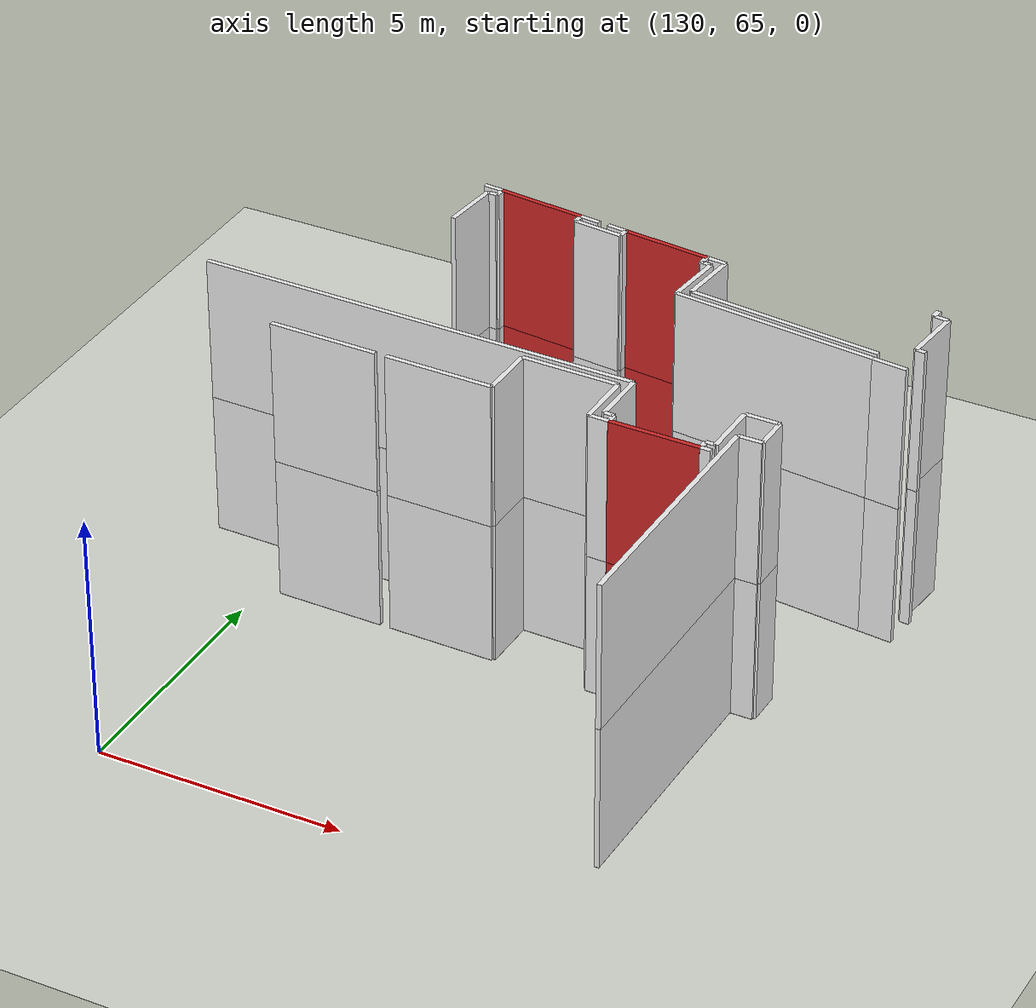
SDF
<sdf version="1.6">
 <world name="default">
  <model name="floor1">
   <static>true</static>
   <pose>135.22499999997672 69.80499999970198 0.0 0 0 0</pose>
   <link name="link">
    <visual name="visual">
     <geometry><box><size>208.23000000003958 126.51000000024214 0.01</size></box></geometry>
     <material>
      <script><uri>file://media/materials/scripts/gazebo.material</uri><name>Gazebo/Concrete</name></script>
      <ambient>1 1 1 0.5</ambient>
      <diffuse>1 1 1 0.5</diffuse>
     </material>
    </visual>
    <collision name="collision">
     <geometry><box><size>208.23000000003958 126.51000000024214 0.01</size></box></geometry>
     <surface><friction><ode><mu>1.0</mu><mu2>1.0</mu2></ode></friction></surface>
    </collision>
   </link>
  </model>
  <model name="wall_135.5_76.8_1.5">
   <static>true</static>
   <pose>135.49499999999534 76.79000000003725 1.5 0 0 -0.10022174961299568</pose>
   <link name="link">
    <visual name="visual">
     <geometry><box><size>1.799027515083101 0.1 3</size></box></geometry>
     <material>
      <script><uri>file://media/materials/scripts/gazebo.material</uri><name>Gazebo/Red</name></script>
     </material>
    </visual>
    <collision name="collision"><geometry><box><size>1.799027515083101 0.1 3</size></box></geometry></collision>
   </link>
  </model>
  <model name="wall_132.7_77.1_1.5">
   <static>true</static>
   <pose>132.7049999999872 77.07000000006519 1.5 0 0 -0.10022174987377463</pose>
   <link name="link">
    <visual name="visual">
     <geometry><box><size>1.7990275150717767 0.1 3</size></box></geometry>
     <material>
      <script><uri>file://media/materials/scripts/gazebo.material</uri><name>Gazebo/Red</name></script>
     </material>
    </visual>
    <collision name="collision"><geometry><box><size>1.7990275150717767 0.1 3</size></box></geometry></collision>
   </link>
  </model>
  <model name="wall_138.2_70.8_1.5">
   <static>true</static>
   <pose>138.2149999999965 70.78000000002794 1.5 0 0 -0.01104927408967263</pose>
   <link name="link">
    <visual name="visual">
     <geometry><box><size>1.810110493862824 0.1 3</size></box></geometry>
     <material>
      <script><uri>file://media/materials/scripts/gazebo.material</uri><name>Gazebo/Red</name></script>
     </material>
    </visual>
    <collision name="collision"><geometry><box><size>1.810110493862824 0.1 3</size></box></geometry></collision>
   </link>
  </model>
  <model name="wall_135.5_76.8_4.5">
   <static>true</static>
   <pose>135.49499999999534 76.79000000003725 4.5 0 0 -0.10022174961299568</pose>
   <link name="link">
    <visual name="visual">
     <geometry><box><size>1.799027515083101 0.1 3</size></box></geometry>
     <material>
      <script><uri>file://media/materials/scripts/gazebo.material</uri><name>Gazebo/Red</name></script>
     </material>
    </visual>
    <collision name="collision"><geometry><box><size>1.799027515083101 0.1 3</size></box></geometry></collision>
   </link>
  </model>
  <model name="wall_132.7_77.1_4.5">
   <static>true</static>
   <pose>132.7049999999872 77.07000000006519 4.5 0 0 -0.10022174987377463</pose>
   <link name="link">
    <visual name="visual">
     <geometry><box><size>1.7990275150717767 0.1 3</size></box></geometry>
     <material>
      <script><uri>file://media/materials/scripts/gazebo.material</uri><name>Gazebo/Red</name></script>
     </material>
    </visual>
    <collision name="collision"><geometry><box><size>1.7990275150717767 0.1 3</size></box></geometry></collision>
   </link>
  </model>
  <model name="wall_138.2_70.8_4.5">
   <static>true</static>
   <pose>138.2149999999965 70.78000000002794 4.5 0 0 -0.01104927408967263</pose>
   <link name="link">
    <visual name="visual">
     <geometry><box><size>1.810110493862824 0.1 3</size></box></geometry>
     <material>
      <script><uri>file://media/materials/scripts/gazebo.material</uri><name>Gazebo/Red</name></script>
     </material>
    </visual>
    <collision name="collision"><geometry><box><size>1.810110493862824 0.1 3</size></box></geometry></collision>
   </link>
  </model>
  <model name="wall_134.4_76.9_1.5">
   <static>true</static>
   <pose>134.39999999999418 76.89999999990687 1.5 0 0 3.0419240009977764</pose>
   <link name="link">
    <visual name="visual">
     <geometry><box><size>0.4019950248137912 0.1 3</size></box></geometry>
     <material>
      <script><uri>file://media/materials/scripts/gazebo.material</uri><name>Gazebo/White</name></script>
     </material>
    </visual>
    <collision name="collision"><geometry><box><size>0.4019950248137912 0.1 3</size></box></geometry></collision>
   </link>
  </model>
  <model name="wall_138.6_75.3_1.5">
   <static>true</static>
   <pose>138.63999999998487 75.26000000000931 1.5 0 0 3.0404164645756886</pose>
   <link name="link">
    <visual name="visual">
     <geometry><box><size>3.9602525171943066 0.1 3</size></box></geometry>
     <material>
      <script><uri>file://media/materials/scripts/gazebo.material</uri><name>Gazebo/White</name></script>
     </material>
    </visual>
    <collision name="collision"><geometry><box><size>3.9602525171943066 0.1 3</size></box></geometry></collision>
   </link>
  </model>
  <model name="wall_136.7_76.1_1.5">
   <static>true</static>
   <pose>136.72999999998137 76.06000000005588 1.5 0 0 1.4711276743229451</pose>
   <link name="link">
    <visual name="visual">
     <geometry><box><size>1.2059850747193837 0.1 3</size></box></geometry>
     <material>
      <script><uri>file://media/materials/scripts/gazebo.material</uri><name>Gazebo/White</name></script>
     </material>
    </visual>
    <collision name="collision"><geometry><box><size>1.2059850747193837 0.1 3</size></box></geometry></collision>
   </link>
  </model>
  <model name="wall_136.6_76.7_1.5">
   <static>true</static>
   <pose>136.5899999999965 76.68000000016764 1.5 0 0 3.0419240009977764</pose>
   <link name="link">
    <visual name="visual">
     <geometry><box><size>0.4019950248137912 0.1 3</size></box></geometry>
     <material>
      <script><uri>file://media/materials/scripts/gazebo.material</uri><name>Gazebo/White</name></script>
     </material>
    </visual>
    <collision name="collision"><geometry><box><size>0.4019950248137912 0.1 3</size></box></geometry></collision>
   </link>
  </model>
  <model name="wall_133.8_77.0_1.5">
   <static>true</static>
   <pose>133.79999999998836 76.95999999996275 1.5 0 0 -0.09966865257760905</pose>
   <link name="link">
    <visual name="visual">
     <geometry><box><size>0.40199502487170996 0.1 3</size></box></geometry>
     <material>
      <script><uri>file://media/materials/scripts/gazebo.material</uri><name>Gazebo/White</name></script>
     </material>
    </visual>
    <collision name="collision"><geometry><box><size>0.40199502487170996 0.1 3</size></box></geometry></collision>
   </link>
  </model>
  <model name="wall_131.6_77.2_1.5">
   <static>true</static>
   <pose>131.60999999998603 77.18000000016764 1.5 0 0 -0.09966865257760905</pose>
   <link name="link">
    <visual name="visual">
     <geometry><box><size>0.40199502487170996 0.1 3</size></box></geometry>
     <material>
      <script><uri>file://media/materials/scripts/gazebo.material</uri><name>Gazebo/White</name></script>
     </material>
    </visual>
    <collision name="collision"><geometry><box><size>0.40199502487170996 0.1 3</size></box></geometry></collision>
   </link>
  </model>
  <model name="wall_141.0_76.8_1.5">
   <static>true</static>
   <pose>140.9899999999907 76.8300000000745 1.5 0 0 -1.6704649792860586</pose>
   <link name="link">
    <visual name="visual">
     <geometry><box><size>0.20099751260961132 0.1 3</size></box></geometry>
     <material>
      <script><uri>file://media/materials/scripts/gazebo.material</uri><name>Gazebo/White</name></script>
     </material>
    </visual>
    <collision name="collision"><geometry><box><size>0.20099751260961132 0.1 3</size></box></geometry></collision>
   </link>
  </model>
  <model name="wall_141.1_76.7_1.5">
   <static>true</static>
   <pose>141.13000000000466 76.71999999997206 1.5 0 0 -0.066568163827335</pose>
   <link name="link">
    <visual name="visual">
     <geometry><box><size>0.30066592761516014 0.1 3</size></box></geometry>
     <material>
      <script><uri>file://media/materials/scripts/gazebo.material</uri><name>Gazebo/White</name></script>
     </material>
    </visual>
    <collision name="collision"><geometry><box><size>0.30066592761516014 0.1 3</size></box></geometry></collision>
   </link>
  </model>
  <model name="wall_141.2_76.1_1.5">
   <static>true</static>
   <pose>141.22000000000116 76.10999999986961 1.5 0 0 -1.6704649793148743</pose>
   <link name="link">
    <visual name="visual">
     <geometry><box><size>1.2059850747251755 0.1 3</size></box></geometry>
     <material>
      <script><uri>file://media/materials/scripts/gazebo.material</uri><name>Gazebo/White</name></script>
     </material>
    </visual>
    <collision name="collision"><geometry><box><size>1.2059850747251755 0.1 3</size></box></geometry></collision>
   </link>
  </model>
  <model name="wall_141.3_75.5_1.5">
   <static>true</static>
   <pose>141.2599999999802 75.5 1.5 0 0 -0.09966865027235515</pose>
   <link name="link">
    <visual name="visual">
     <geometry><box><size>0.20099751238951993 0.1 3</size></box></geometry>
     <material>
      <script><uri>file://media/materials/scripts/gazebo.material</uri><name>Gazebo/White</name></script>
     </material>
    </visual>
    <collision name="collision"><geometry><box><size>0.20099751238951993 0.1 3</size></box></geometry></collision>
   </link>
  </model>
  <model name="wall_140.9_74.8_1.5">
   <static>true</static>
   <pose>140.94000000000233 74.83499999996275 1.5 0 0 3.041924000670513</pose>
   <link name="link">
    <visual name="visual">
     <geometry><box><size>0.7034912934617817 0.1 3</size></box></geometry>
     <material>
      <script><uri>file://media/materials/scripts/gazebo.material</uri><name>Gazebo/White</name></script>
     </material>
    </visual>
    <collision name="collision"><geometry><box><size>0.7034912934617817 0.1 3</size></box></geometry></collision>
   </link>
  </model>
  <model name="wall_138.5_75.1_1.5">
   <static>true</static>
   <pose>138.52000000001863 75.07499999995343 1.5 0 0 3.0428807098041264</pose>
   <link name="link">
    <visual name="visual">
     <geometry><box><size>4.1602523961721385 0.1 3</size></box></geometry>
     <material>
      <script><uri>file://media/materials/scripts/gazebo.material</uri><name>Gazebo/White</name></script>
     </material>
    </visual>
    <collision name="collision"><geometry><box><size>4.1602523961721385 0.1 3</size></box></geometry></collision>
   </link>
  </model>
  <model name="wall_136.5_75.9_1.5">
   <static>true</static>
   <pose>136.5100000000093 75.87999999988824 1.5 0 0 1.4711276743229451</pose>
   <link name="link">
    <visual name="visual">
     <geometry><box><size>1.2059850747193837 0.1 3</size></box></geometry>
     <material>
      <script><uri>file://media/materials/scripts/gazebo.material</uri><name>Gazebo/White</name></script>
     </material>
    </visual>
    <collision name="collision"><geometry><box><size>1.2059850747193837 0.1 3</size></box></geometry></collision>
   </link>
  </model>
  <model name="wall_136.5_76.5_1.5">
   <static>true</static>
   <pose>136.47000000000116 76.48999999999069 1.5 0 0 3.0419240010121844</pose>
   <link name="link">
    <visual name="visual">
     <geometry><box><size>0.20099751243585498 0.1 3</size></box></geometry>
     <material>
      <script><uri>file://media/materials/scripts/gazebo.material</uri><name>Gazebo/White</name></script>
     </material>
    </visual>
    <collision name="collision"><geometry><box><size>0.20099751243585498 0.1 3</size></box></geometry></collision>
   </link>
  </model>
  <model name="wall_136.4_76.6_1.5">
   <static>true</static>
   <pose>136.38000000000466 76.60000000009313 1.5 0 0 1.4711276743037347</pose>
   <link name="link">
    <visual name="visual">
     <geometry><box><size>0.20099751260961132 0.1 3</size></box></geometry>
     <material>
      <script><uri>file://media/materials/scripts/gazebo.material</uri><name>Gazebo/White</name></script>
     </material>
    </visual>
    <collision name="collision"><geometry><box><size>0.20099751260961132 0.1 3</size></box></geometry></collision>
   </link>
  </model>
  <model name="wall_134.6_76.8_1.5">
   <static>true</static>
   <pose>134.5899999999965 76.78000000002794 1.5 0 0 -1.6704649792284274</pose>
   <link name="link">
    <visual name="visual">
     <geometry><box><size>0.20099751214046915 0.1 3</size></box></geometry>
     <material>
      <script><uri>file://media/materials/scripts/gazebo.material</uri><name>Gazebo/White</name></script>
     </material>
    </visual>
    <collision name="collision"><geometry><box><size>0.20099751214046915 0.1 3</size></box></geometry></collision>
   </link>
  </model>
  <model name="wall_134.1_76.7_1.5">
   <static>true</static>
   <pose>134.0800000000163 76.72999999998137 1.5 0 0 3.0419240014674718</pose>
   <link name="link">
    <visual name="visual">
     <geometry><box><size>1.004987562075021 0.1 3</size></box></geometry>
     <material>
      <script><uri>file://media/materials/scripts/gazebo.material</uri><name>Gazebo/White</name></script>
     </material>
    </visual>
    <collision name="collision"><geometry><box><size>1.004987562075021 0.1 3</size></box></geometry></collision>
   </link>
  </model>
  <model name="wall_133.6_76.9_1.5">
   <static>true</static>
   <pose>133.5899999999965 76.87999999988824 1.5 0 0 1.4711276745918913</pose>
   <link name="link">
    <visual name="visual">
     <geometry><box><size>0.20099751260381943 0.1 3</size></box></geometry>
     <material>
      <script><uri>file://media/materials/scripts/gazebo.material</uri><name>Gazebo/White</name></script>
     </material>
    </visual>
    <collision name="collision"><geometry><box><size>0.20099751260381943 0.1 3</size></box></geometry></collision>
   </link>
  </model>
  <model name="wall_131.8_77.1_1.5">
   <static>true</static>
   <pose>131.79999999998836 77.06000000005588 1.5 0 0 -1.6704649792860586</pose>
   <link name="link">
    <visual name="visual">
     <geometry><box><size>0.20099751260961132 0.1 3</size></box></geometry>
     <material>
      <script><uri>file://media/materials/scripts/gazebo.material</uri><name>Gazebo/White</name></script>
     </material>
    </visual>
    <collision name="collision"><geometry><box><size>0.20099751260961132 0.1 3</size></box></geometry></collision>
   </link>
  </model>
  <model name="wall_131.7_77.0_1.5">
   <static>true</static>
   <pose>131.69000000000233 76.96999999997206 1.5 0 0 3.0419240009833683</pose>
   <link name="link">
    <visual name="visual">
     <geometry><box><size>0.20099751237793617 0.1 3</size></box></geometry>
     <material>
      <script><uri>file://media/materials/scripts/gazebo.material</uri><name>Gazebo/White</name></script>
     </material>
    </visual>
    <collision name="collision"><geometry><box><size>0.20099751237793617 0.1 3</size></box></geometry></collision>
   </link>
  </model>
  <model name="wall_131.5_76.4_1.5">
   <static>true</static>
   <pose>131.52999999999884 76.38500000000931 1.5 0 0 -1.6712969258987618</pose>
   <link name="link">
    <visual name="visual">
     <geometry><box><size>1.1960351164910918 0.1 3</size></box></geometry>
     <material>
      <script><uri>file://media/materials/scripts/gazebo.material</uri><name>Gazebo/White</name></script>
     </material>
    </visual>
    <collision name="collision"><geometry><box><size>1.1960351164910918 0.1 3</size></box></geometry></collision>
   </link>
  </model>
  <model name="wall_132.6_72.2_1.5">
   <static>true</static>
   <pose>132.64499999998952 72.2050000000745 1.5 0 0 -0.014491739052994581</pose>
   <link name="link">
    <visual name="visual">
     <geometry><box><size>8.970941979553427 0.1 3</size></box></geometry>
     <material>
      <script><uri>file://media/materials/scripts/gazebo.material</uri><name>Gazebo/White</name></script>
     </material>
    </visual>
    <collision name="collision"><geometry><box><size>8.970941979553427 0.1 3</size></box></geometry></collision>
   </link>
  </model>
  <model name="wall_137.1_71.6_1.5">
   <static>true</static>
   <pose>137.125 71.57000000006519 1.5 0 0 -1.579568031646505</pose>
   <link name="link">
    <visual name="visual">
     <geometry><box><size>1.1400438589359028 0.1 3</size></box></geometry>
     <material>
      <script><uri>file://media/materials/scripts/gazebo.material</uri><name>Gazebo/White</name></script>
     </material>
    </visual>
    <collision name="collision"><geometry><box><size>1.1400438589359028 0.1 3</size></box></geometry></collision>
   </link>
  </model>
  <model name="wall_137.2_71.0_1.5">
   <static>true</static>
   <pose>137.2149999999965 70.99500000011176 1.5 0 0 -0.052583060437140824</pose>
   <link name="link">
    <visual name="visual">
     <geometry><box><size>0.19026297589498176 0.1 3</size></box></geometry>
     <material>
      <script><uri>file://media/materials/scripts/gazebo.material</uri><name>Gazebo/White</name></script>
     </material>
    </visual>
    <collision name="collision"><geometry><box><size>0.19026297589498176 0.1 3</size></box></geometry></collision>
   </link>
  </model>
  <model name="wall_137.3_70.9_1.5">
   <static>true</static>
   <pose>137.30999999999767 70.89000000013039 1.5 0 0 -1.5707963267948966</pose>
   <link name="link">
    <visual name="visual">
     <geometry><box><size>0.20000000018626451 0.1 3</size></box></geometry>
     <material>
      <script><uri>file://media/materials/scripts/gazebo.material</uri><name>Gazebo/White</name></script>
     </material>
    </visual>
    <collision name="collision"><geometry><box><size>0.20000000018626451 0.1 3</size></box></geometry></collision>
   </link>
  </model>
  <model name="wall_139.1_70.9_1.5">
   <static>true</static>
   <pose>139.11999999999534 70.87000000011176 1.5 0 0 1.5707963267948966</pose>
   <link name="link">
    <visual name="visual">
     <geometry><box><size>0.20000000018626451 0.1 3</size></box></geometry>
     <material>
      <script><uri>file://media/materials/scripts/gazebo.material</uri><name>Gazebo/White</name></script>
     </material>
    </visual>
    <collision name="collision"><geometry><box><size>0.20000000018626451 0.1 3</size></box></geometry></collision>
   </link>
  </model>
  <model name="wall_139.2_71.0_1.5">
   <static>true</static>
   <pose>139.22000000000116 70.97000000020489 1.5 0 0 0.0</pose>
   <link name="link">
    <visual name="visual">
     <geometry><box><size>0.20000000001164153 0.1 3</size></box></geometry>
     <material>
      <script><uri>file://media/materials/scripts/gazebo.material</uri><name>Gazebo/White</name></script>
     </material>
    </visual>
    <collision name="collision"><geometry><box><size>0.20000000001164153 0.1 3</size></box></geometry></collision>
   </link>
  </model>
  <model name="wall_139.3_71.5_1.5">
   <static>true</static>
   <pose>139.3300000000163 71.54000000003725 1.5 0 0 1.553254266716002</pose>
   <link name="link">
    <visual name="visual">
     <geometry><box><size>1.1401754247642402 0.1 3</size></box></geometry>
     <material>
      <script><uri>file://media/materials/scripts/gazebo.material</uri><name>Gazebo/White</name></script>
     </material>
    </visual>
    <collision name="collision"><geometry><box><size>1.1401754247642402 0.1 3</size></box></geometry></collision>
   </link>
  </model>
  <model name="wall_139.7_72.1_1.5">
   <static>true</static>
   <pose>139.68500000002678 72.10499999998137 1.5 0 0 -0.014491738741580868</pose>
   <link name="link">
    <visual name="visual">
     <geometry><box><size>0.6900724599625337 0.1 3</size></box></geometry>
     <material>
      <script><uri>file://media/materials/scripts/gazebo.material</uri><name>Gazebo/White</name></script>
     </material>
    </visual>
    <collision name="collision"><geometry><box><size>0.6900724599625337 0.1 3</size></box></geometry></collision>
   </link>
  </model>
  <model name="wall_140.0_71.8_1.5">
   <static>true</static>
   <pose>140.02500000002328 71.75500000012107 1.5 0 0 -1.5852880658750648</pose>
   <link name="link">
    <visual name="visual">
     <geometry><box><size>0.6900724599077062 0.1 3</size></box></geometry>
     <material>
      <script><uri>file://media/materials/scripts/gazebo.material</uri><name>Gazebo/White</name></script>
     </material>
    </visual>
    <collision name="collision"><geometry><box><size>0.6900724599077062 0.1 3</size></box></geometry></collision>
   </link>
  </model>
  <model name="wall_139.8_71.4_1.5">
   <static>true</static>
   <pose>139.77500000002328 71.41000000014901 1.5 0 0 3.141592653589793</pose>
   <link name="link">
    <visual name="visual">
     <geometry><box><size>0.4899999999906868 0.1 3</size></box></geometry>
     <material>
      <script><uri>file://media/materials/scripts/gazebo.material</uri><name>Gazebo/White</name></script>
     </material>
    </visual>
    <collision name="collision"><geometry><box><size>0.4899999999906868 0.1 3</size></box></geometry></collision>
   </link>
  </model>
  <model name="wall_139.5_68.8_1.5">
   <static>true</static>
   <pose>139.49500000002445 68.80000000004657 1.5 0 0 -1.5842054847435334</pose>
   <link name="link">
    <visual name="visual">
     <geometry><box><size>5.220469327765468 0.1 3</size></box></geometry>
     <material>
      <script><uri>file://media/materials/scripts/gazebo.material</uri><name>Gazebo/White</name></script>
     </material>
    </visual>
    <collision name="collision"><geometry><box><size>5.220469327765468 0.1 3</size></box></geometry></collision>
   </link>
  </model>
  <model name="wall_131.4_70.9_1.5">
   <static>true</static>
   <pose>131.44999999998254 70.875 1.5 0 0 3.127957134969853</pose>
   <link name="link">
    <visual name="visual">
     <geometry><box><size>2.2002045359617974 0.1 3</size></box></geometry>
     <material>
      <script><uri>file://media/materials/scripts/gazebo.material</uri><name>Gazebo/White</name></script>
     </material>
    </visual>
    <collision name="collision"><geometry><box><size>2.2002045359617974 0.1 3</size></box></geometry></collision>
   </link>
  </model>
  <model name="wall_133.9_70.8_1.5">
   <static>true</static>
   <pose>133.85500000001048 70.84499999997206 1.5 0 0 -0.013697773279311262</pose>
   <link name="link">
    <visual name="visual">
     <geometry><box><size>2.190205469812799 0.1 3</size></box></geometry>
     <material>
      <script><uri>file://media/materials/scripts/gazebo.material</uri><name>Gazebo/White</name></script>
     </material>
    </visual>
    <collision name="collision"><geometry><box><size>2.190205469812799 0.1 3</size></box></geometry></collision>
   </link>
  </model>
  <model name="wall_135.0_71.4_1.5">
   <static>true</static>
   <pose>134.95999999999185 71.4000000001397 1.5 0 0 1.5532542667742097</pose>
   <link name="link">
    <visual name="visual">
     <geometry><box><size>1.1401754252288088 0.1 3</size></box></geometry>
     <material>
      <script><uri>file://media/materials/scripts/gazebo.material</uri><name>Gazebo/White</name></script>
     </material>
    </visual>
    <collision name="collision"><geometry><box><size>1.1401754252288088 0.1 3</size></box></geometry></collision>
   </link>
  </model>
  <model name="wall_135.9_72.0_1.5">
   <static>true</static>
   <pose>135.94499999997788 71.9550000000745 1.5 0 0 -0.015383401914200052</pose>
   <link name="link">
    <visual name="visual">
     <geometry><box><size>1.9502307555930525 0.1 3</size></box></geometry>
     <material>
      <script><uri>file://media/materials/scripts/gazebo.material</uri><name>Gazebo/White</name></script>
     </material>
    </visual>
    <collision name="collision"><geometry><box><size>1.9502307555930525 0.1 3</size></box></geometry></collision>
   </link>
  </model>
  <model name="wall_136.9_71.4_1.5">
   <static>true</static>
   <pose>136.91499999997905 71.36999999987893 1.5 0 0 -1.579568031646505</pose>
   <link name="link">
    <visual name="visual">
     <geometry><box><size>1.1400438589359028 0.1 3</size></box></geometry>
     <material>
      <script><uri>file://media/materials/scripts/gazebo.material</uri><name>Gazebo/White</name></script>
     </material>
    </visual>
    <collision name="collision"><geometry><box><size>1.1400438589359028 0.1 3</size></box></geometry></collision>
   </link>
  </model>
  <model name="wall_137.1_70.8_1.5">
   <static>true</static>
   <pose>137.10999999998603 70.7949999999255 1.5 0 0 -0.02499479305902136</pose>
   <link name="link">
    <visual name="visual">
     <geometry><box><size>0.40012498049254075 0.1 3</size></box></geometry>
     <material>
      <script><uri>file://media/materials/scripts/gazebo.material</uri><name>Gazebo/White</name></script>
     </material>
    </visual>
    <collision name="collision"><geometry><box><size>0.40012498049254075 0.1 3</size></box></geometry></collision>
   </link>
  </model>
  <model name="wall_139.2_70.8_1.5">
   <static>true</static>
   <pose>139.22000000000116 70.77000000001863 1.5 0 0 0.0</pose>
   <link name="link">
    <visual name="visual">
     <geometry><box><size>0.20000000001164153 0.1 3</size></box></geometry>
     <material>
      <script><uri>file://media/materials/scripts/gazebo.material</uri><name>Gazebo/White</name></script>
     </material>
    </visual>
    <collision name="collision"><geometry><box><size>0.20000000001164153 0.1 3</size></box></geometry></collision>
   </link>
  </model>
  <model name="wall_134.4_76.9_4.5">
   <static>true</static>
   <pose>134.39999999999418 76.89999999990687 4.5 0 0 3.0419240009977764</pose>
   <link name="link">
    <visual name="visual">
     <geometry><box><size>0.4019950248137912 0.1 3</size></box></geometry>
     <material>
      <script><uri>file://media/materials/scripts/gazebo.material</uri><name>Gazebo/White</name></script>
     </material>
    </visual>
    <collision name="collision"><geometry><box><size>0.4019950248137912 0.1 3</size></box></geometry></collision>
   </link>
  </model>
  <model name="wall_138.6_75.3_4.5">
   <static>true</static>
   <pose>138.63999999998487 75.26000000000931 4.5 0 0 3.0404164645756886</pose>
   <link name="link">
    <visual name="visual">
     <geometry><box><size>3.9602525171943066 0.1 3</size></box></geometry>
     <material>
      <script><uri>file://media/materials/scripts/gazebo.material</uri><name>Gazebo/White</name></script>
     </material>
    </visual>
    <collision name="collision"><geometry><box><size>3.9602525171943066 0.1 3</size></box></geometry></collision>
   </link>
  </model>
  <model name="wall_136.7_76.1_4.5">
   <static>true</static>
   <pose>136.72999999998137 76.06000000005588 4.5 0 0 1.4711276743229451</pose>
   <link name="link">
    <visual name="visual">
     <geometry><box><size>1.2059850747193837 0.1 3</size></box></geometry>
     <material>
      <script><uri>file://media/materials/scripts/gazebo.material</uri><name>Gazebo/White</name></script>
     </material>
    </visual>
    <collision name="collision"><geometry><box><size>1.2059850747193837 0.1 3</size></box></geometry></collision>
   </link>
  </model>
  <model name="wall_136.6_76.7_4.5">
   <static>true</static>
   <pose>136.5899999999965 76.68000000016764 4.5 0 0 3.0419240009977764</pose>
   <link name="link">
    <visual name="visual">
     <geometry><box><size>0.4019950248137912 0.1 3</size></box></geometry>
     <material>
      <script><uri>file://media/materials/scripts/gazebo.material</uri><name>Gazebo/White</name></script>
     </material>
    </visual>
    <collision name="collision"><geometry><box><size>0.4019950248137912 0.1 3</size></box></geometry></collision>
   </link>
  </model>
  <model name="wall_133.8_77.0_4.5">
   <static>true</static>
   <pose>133.79999999998836 76.95999999996275 4.5 0 0 -0.09966865257760905</pose>
   <link name="link">
    <visual name="visual">
     <geometry><box><size>0.40199502487170996 0.1 3</size></box></geometry>
     <material>
      <script><uri>file://media/materials/scripts/gazebo.material</uri><name>Gazebo/White</name></script>
     </material>
    </visual>
    <collision name="collision"><geometry><box><size>0.40199502487170996 0.1 3</size></box></geometry></collision>
   </link>
  </model>
  <model name="wall_131.6_77.2_4.5">
   <static>true</static>
   <pose>131.60999999998603 77.18000000016764 4.5 0 0 -0.09966865257760905</pose>
   <link name="link">
    <visual name="visual">
     <geometry><box><size>0.40199502487170996 0.1 3</size></box></geometry>
     <material>
      <script><uri>file://media/materials/scripts/gazebo.material</uri><name>Gazebo/White</name></script>
     </material>
    </visual>
    <collision name="collision"><geometry><box><size>0.40199502487170996 0.1 3</size></box></geometry></collision>
   </link>
  </model>
  <model name="wall_141.0_76.8_4.5">
   <static>true</static>
   <pose>140.9899999999907 76.8300000000745 4.5 0 0 -1.6704649792860586</pose>
   <link name="link">
    <visual name="visual">
     <geometry><box><size>0.20099751260961132 0.1 3</size></box></geometry>
     <material>
      <script><uri>file://media/materials/scripts/gazebo.material</uri><name>Gazebo/White</name></script>
     </material>
    </visual>
    <collision name="collision"><geometry><box><size>0.20099751260961132 0.1 3</size></box></geometry></collision>
   </link>
  </model>
  <model name="wall_141.1_76.7_4.5">
   <static>true</static>
   <pose>141.13000000000466 76.71999999997206 4.5 0 0 -0.066568163827335</pose>
   <link name="link">
    <visual name="visual">
     <geometry><box><size>0.30066592761516014 0.1 3</size></box></geometry>
     <material>
      <script><uri>file://media/materials/scripts/gazebo.material</uri><name>Gazebo/White</name></script>
     </material>
    </visual>
    <collision name="collision"><geometry><box><size>0.30066592761516014 0.1 3</size></box></geometry></collision>
   </link>
  </model>
  <model name="wall_141.2_76.1_4.5">
   <static>true</static>
   <pose>141.22000000000116 76.10999999986961 4.5 0 0 -1.6704649793148743</pose>
   <link name="link">
    <visual name="visual">
     <geometry><box><size>1.2059850747251755 0.1 3</size></box></geometry>
     <material>
      <script><uri>file://media/materials/scripts/gazebo.material</uri><name>Gazebo/White</name></script>
     </material>
    </visual>
    <collision name="collision"><geometry><box><size>1.2059850747251755 0.1 3</size></box></geometry></collision>
   </link>
  </model>
  <model name="wall_141.3_75.5_4.5">
   <static>true</static>
   <pose>141.2599999999802 75.5 4.5 0 0 -0.09966865027235515</pose>
   <link name="link">
    <visual name="visual">
     <geometry><box><size>0.20099751238951993 0.1 3</size></box></geometry>
     <material>
      <script><uri>file://media/materials/scripts/gazebo.material</uri><name>Gazebo/White</name></script>
     </material>
    </visual>
    <collision name="collision"><geometry><box><size>0.20099751238951993 0.1 3</size></box></geometry></collision>
   </link>
  </model>
  <model name="wall_140.9_74.8_4.5">
   <static>true</static>
   <pose>140.94000000000233 74.83499999996275 4.5 0 0 3.041924000670513</pose>
   <link name="link">
    <visual name="visual">
     <geometry><box><size>0.7034912934617817 0.1 3</size></box></geometry>
     <material>
      <script><uri>file://media/materials/scripts/gazebo.material</uri><name>Gazebo/White</name></script>
     </material>
    </visual>
    <collision name="collision"><geometry><box><size>0.7034912934617817 0.1 3</size></box></geometry></collision>
   </link>
  </model>
  <model name="wall_138.5_75.1_4.5">
   <static>true</static>
   <pose>138.52000000001863 75.07499999995343 4.5 0 0 3.0428807098041264</pose>
   <link name="link">
    <visual name="visual">
     <geometry><box><size>4.1602523961721385 0.1 3</size></box></geometry>
     <material>
      <script><uri>file://media/materials/scripts/gazebo.material</uri><name>Gazebo/White</name></script>
     </material>
    </visual>
    <collision name="collision"><geometry><box><size>4.1602523961721385 0.1 3</size></box></geometry></collision>
   </link>
  </model>
  <model name="wall_136.5_75.9_4.5">
   <static>true</static>
   <pose>136.5100000000093 75.87999999988824 4.5 0 0 1.4711276743229451</pose>
   <link name="link">
    <visual name="visual">
     <geometry><box><size>1.2059850747193837 0.1 3</size></box></geometry>
     <material>
      <script><uri>file://media/materials/scripts/gazebo.material</uri><name>Gazebo/White</name></script>
     </material>
    </visual>
    <collision name="collision"><geometry><box><size>1.2059850747193837 0.1 3</size></box></geometry></collision>
   </link>
  </model>
  <model name="wall_136.5_76.5_4.5">
   <static>true</static>
   <pose>136.47000000000116 76.48999999999069 4.5 0 0 3.0419240010121844</pose>
   <link name="link">
    <visual name="visual">
     <geometry><box><size>0.20099751243585498 0.1 3</size></box></geometry>
     <material>
      <script><uri>file://media/materials/scripts/gazebo.material</uri><name>Gazebo/White</name></script>
     </material>
    </visual>
    <collision name="collision"><geometry><box><size>0.20099751243585498 0.1 3</size></box></geometry></collision>
   </link>
  </model>
  <model name="wall_136.4_76.6_4.5">
   <static>true</static>
   <pose>136.38000000000466 76.60000000009313 4.5 0 0 1.4711276743037347</pose>
   <link name="link">
    <visual name="visual">
     <geometry><box><size>0.20099751260961132 0.1 3</size></box></geometry>
     <material>
      <script><uri>file://media/materials/scripts/gazebo.material</uri><name>Gazebo/White</name></script>
     </material>
    </visual>
    <collision name="collision"><geometry><box><size>0.20099751260961132 0.1 3</size></box></geometry></collision>
   </link>
  </model>
  <model name="wall_134.6_76.8_4.5">
   <static>true</static>
   <pose>134.5899999999965 76.78000000002794 4.5 0 0 -1.6704649792284274</pose>
   <link name="link">
    <visual name="visual">
     <geometry><box><size>0.20099751214046915 0.1 3</size></box></geometry>
     <material>
      <script><uri>file://media/materials/scripts/gazebo.material</uri><name>Gazebo/White</name></script>
     </material>
    </visual>
    <collision name="collision"><geometry><box><size>0.20099751214046915 0.1 3</size></box></geometry></collision>
   </link>
  </model>
  <model name="wall_134.1_76.7_4.5">
   <static>true</static>
   <pose>134.0800000000163 76.72999999998137 4.5 0 0 3.0419240014674718</pose>
   <link name="link">
    <visual name="visual">
     <geometry><box><size>1.004987562075021 0.1 3</size></box></geometry>
     <material>
      <script><uri>file://media/materials/scripts/gazebo.material</uri><name>Gazebo/White</name></script>
     </material>
    </visual>
    <collision name="collision"><geometry><box><size>1.004987562075021 0.1 3</size></box></geometry></collision>
   </link>
  </model>
  <model name="wall_133.6_76.9_4.5">
   <static>true</static>
   <pose>133.5899999999965 76.87999999988824 4.5 0 0 1.4711276745918913</pose>
   <link name="link">
    <visual name="visual">
     <geometry><box><size>0.20099751260381943 0.1 3</size></box></geometry>
     <material>
      <script><uri>file://media/materials/scripts/gazebo.material</uri><name>Gazebo/White</name></script>
     </material>
    </visual>
    <collision name="collision"><geometry><box><size>0.20099751260381943 0.1 3</size></box></geometry></collision>
   </link>
  </model>
  <model name="wall_131.8_77.1_4.5">
   <static>true</static>
   <pose>131.79999999998836 77.06000000005588 4.5 0 0 -1.6704649792860586</pose>
   <link name="link">
    <visual name="visual">
     <geometry><box><size>0.20099751260961132 0.1 3</size></box></geometry>
     <material>
      <script><uri>file://media/materials/scripts/gazebo.material</uri><name>Gazebo/White</name></script>
     </material>
    </visual>
    <collision name="collision"><geometry><box><size>0.20099751260961132 0.1 3</size></box></geometry></collision>
   </link>
  </model>
  <model name="wall_131.7_77.0_4.5">
   <static>true</static>
   <pose>131.69000000000233 76.96999999997206 4.5 0 0 3.0419240009833683</pose>
   <link name="link">
    <visual name="visual">
     <geometry><box><size>0.20099751237793617 0.1 3</size></box></geometry>
     <material>
      <script><uri>file://media/materials/scripts/gazebo.material</uri><name>Gazebo/White</name></script>
     </material>
    </visual>
    <collision name="collision"><geometry><box><size>0.20099751237793617 0.1 3</size></box></geometry></collision>
   </link>
  </model>
  <model name="wall_131.5_76.4_4.5">
   <static>true</static>
   <pose>131.52999999999884 76.38500000000931 4.5 0 0 -1.6712969258987618</pose>
   <link name="link">
    <visual name="visual">
     <geometry><box><size>1.1960351164910918 0.1 3</size></box></geometry>
     <material>
      <script><uri>file://media/materials/scripts/gazebo.material</uri><name>Gazebo/White</name></script>
     </material>
    </visual>
    <collision name="collision"><geometry><box><size>1.1960351164910918 0.1 3</size></box></geometry></collision>
   </link>
  </model>
  <model name="wall_132.6_72.2_4.5">
   <static>true</static>
   <pose>132.64499999998952 72.2050000000745 4.5 0 0 -0.014491739052994581</pose>
   <link name="link">
    <visual name="visual">
     <geometry><box><size>8.970941979553427 0.1 3</size></box></geometry>
     <material>
      <script><uri>file://media/materials/scripts/gazebo.material</uri><name>Gazebo/White</name></script>
     </material>
    </visual>
    <collision name="collision"><geometry><box><size>8.970941979553427 0.1 3</size></box></geometry></collision>
   </link>
  </model>
  <model name="wall_137.1_71.6_4.5">
   <static>true</static>
   <pose>137.125 71.57000000006519 4.5 0 0 -1.579568031646505</pose>
   <link name="link">
    <visual name="visual">
     <geometry><box><size>1.1400438589359028 0.1 3</size></box></geometry>
     <material>
      <script><uri>file://media/materials/scripts/gazebo.material</uri><name>Gazebo/White</name></script>
     </material>
    </visual>
    <collision name="collision"><geometry><box><size>1.1400438589359028 0.1 3</size></box></geometry></collision>
   </link>
  </model>
  <model name="wall_137.2_71.0_4.5">
   <static>true</static>
   <pose>137.2149999999965 70.99500000011176 4.5 0 0 -0.052583060437140824</pose>
   <link name="link">
    <visual name="visual">
     <geometry><box><size>0.19026297589498176 0.1 3</size></box></geometry>
     <material>
      <script><uri>file://media/materials/scripts/gazebo.material</uri><name>Gazebo/White</name></script>
     </material>
    </visual>
    <collision name="collision"><geometry><box><size>0.19026297589498176 0.1 3</size></box></geometry></collision>
   </link>
  </model>
  <model name="wall_137.3_70.9_4.5">
   <static>true</static>
   <pose>137.30999999999767 70.89000000013039 4.5 0 0 -1.5707963267948966</pose>
   <link name="link">
    <visual name="visual">
     <geometry><box><size>0.20000000018626451 0.1 3</size></box></geometry>
     <material>
      <script><uri>file://media/materials/scripts/gazebo.material</uri><name>Gazebo/White</name></script>
     </material>
    </visual>
    <collision name="collision"><geometry><box><size>0.20000000018626451 0.1 3</size></box></geometry></collision>
   </link>
  </model>
  <model name="wall_139.1_70.9_4.5">
   <static>true</static>
   <pose>139.11999999999534 70.87000000011176 4.5 0 0 1.5707963267948966</pose>
   <link name="link">
    <visual name="visual">
     <geometry><box><size>0.20000000018626451 0.1 3</size></box></geometry>
     <material>
      <script><uri>file://media/materials/scripts/gazebo.material</uri><name>Gazebo/White</name></script>
     </material>
    </visual>
    <collision name="collision"><geometry><box><size>0.20000000018626451 0.1 3</size></box></geometry></collision>
   </link>
  </model>
  <model name="wall_139.2_71.0_4.5">
   <static>true</static>
   <pose>139.22000000000116 70.97000000020489 4.5 0 0 0.0</pose>
   <link name="link">
    <visual name="visual">
     <geometry><box><size>0.20000000001164153 0.1 3</size></box></geometry>
     <material>
      <script><uri>file://media/materials/scripts/gazebo.material</uri><name>Gazebo/White</name></script>
     </material>
    </visual>
    <collision name="collision"><geometry><box><size>0.20000000001164153 0.1 3</size></box></geometry></collision>
   </link>
  </model>
  <model name="wall_139.3_71.5_4.5">
   <static>true</static>
   <pose>139.3300000000163 71.54000000003725 4.5 0 0 1.553254266716002</pose>
   <link name="link">
    <visual name="visual">
     <geometry><box><size>1.1401754247642402 0.1 3</size></box></geometry>
     <material>
      <script><uri>file://media/materials/scripts/gazebo.material</uri><name>Gazebo/White</name></script>
     </material>
    </visual>
    <collision name="collision"><geometry><box><size>1.1401754247642402 0.1 3</size></box></geometry></collision>
   </link>
  </model>
  <model name="wall_139.7_72.1_4.5">
   <static>true</static>
   <pose>139.68500000002678 72.10499999998137 4.5 0 0 -0.014491738741580868</pose>
   <link name="link">
    <visual name="visual">
     <geometry><box><size>0.6900724599625337 0.1 3</size></box></geometry>
     <material>
      <script><uri>file://media/materials/scripts/gazebo.material</uri><name>Gazebo/White</name></script>
     </material>
    </visual>
    <collision name="collision"><geometry><box><size>0.6900724599625337 0.1 3</size></box></geometry></collision>
   </link>
  </model>
  <model name="wall_140.0_71.8_4.5">
   <static>true</static>
   <pose>140.02500000002328 71.75500000012107 4.5 0 0 -1.5852880658750648</pose>
   <link name="link">
    <visual name="visual">
     <geometry><box><size>0.6900724599077062 0.1 3</size></box></geometry>
     <material>
      <script><uri>file://media/materials/scripts/gazebo.material</uri><name>Gazebo/White</name></script>
     </material>
    </visual>
    <collision name="collision"><geometry><box><size>0.6900724599077062 0.1 3</size></box></geometry></collision>
   </link>
  </model>
  <model name="wall_139.8_71.4_4.5">
   <static>true</static>
   <pose>139.77500000002328 71.41000000014901 4.5 0 0 3.141592653589793</pose>
   <link name="link">
    <visual name="visual">
     <geometry><box><size>0.4899999999906868 0.1 3</size></box></geometry>
     <material>
      <script><uri>file://media/materials/scripts/gazebo.material</uri><name>Gazebo/White</name></script>
     </material>
    </visual>
    <collision name="collision"><geometry><box><size>0.4899999999906868 0.1 3</size></box></geometry></collision>
   </link>
  </model>
  <model name="wall_139.5_68.8_4.5">
   <static>true</static>
   <pose>139.49500000002445 68.80000000004657 4.5 0 0 -1.5842054847435334</pose>
   <link name="link">
    <visual name="visual">
     <geometry><box><size>5.220469327765468 0.1 3</size></box></geometry>
     <material>
      <script><uri>file://media/materials/scripts/gazebo.material</uri><name>Gazebo/White</name></script>
     </material>
    </visual>
    <collision name="collision"><geometry><box><size>5.220469327765468 0.1 3</size></box></geometry></collision>
   </link>
  </model>
  <model name="wall_131.4_70.9_4.5">
   <static>true</static>
   <pose>131.44999999998254 70.875 4.5 0 0 3.127957134969853</pose>
   <link name="link">
    <visual name="visual">
     <geometry><box><size>2.2002045359617974 0.1 3</size></box></geometry>
     <material>
      <script><uri>file://media/materials/scripts/gazebo.material</uri><name>Gazebo/White</name></script>
     </material>
    </visual>
    <collision name="collision"><geometry><box><size>2.2002045359617974 0.1 3</size></box></geometry></collision>
   </link>
  </model>
  <model name="wall_133.9_70.8_4.5">
   <static>true</static>
   <pose>133.85500000001048 70.84499999997206 4.5 0 0 -0.013697773279311262</pose>
   <link name="link">
    <visual name="visual">
     <geometry><box><size>2.190205469812799 0.1 3</size></box></geometry>
     <material>
      <script><uri>file://media/materials/scripts/gazebo.material</uri><name>Gazebo/White</name></script>
     </material>
    </visual>
    <collision name="collision"><geometry><box><size>2.190205469812799 0.1 3</size></box></geometry></collision>
   </link>
  </model>
  <model name="wall_135.0_71.4_4.5">
   <static>true</static>
   <pose>134.95999999999185 71.4000000001397 4.5 0 0 1.5532542667742097</pose>
   <link name="link">
    <visual name="visual">
     <geometry><box><size>1.1401754252288088 0.1 3</size></box></geometry>
     <material>
      <script><uri>file://media/materials/scripts/gazebo.material</uri><name>Gazebo/White</name></script>
     </material>
    </visual>
    <collision name="collision"><geometry><box><size>1.1401754252288088 0.1 3</size></box></geometry></collision>
   </link>
  </model>
  <model name="wall_135.9_72.0_4.5">
   <static>true</static>
   <pose>135.94499999997788 71.9550000000745 4.5 0 0 -0.015383401914200052</pose>
   <link name="link">
    <visual name="visual">
     <geometry><box><size>1.9502307555930525 0.1 3</size></box></geometry>
     <material>
      <script><uri>file://media/materials/scripts/gazebo.material</uri><name>Gazebo/White</name></script>
     </material>
    </visual>
    <collision name="collision"><geometry><box><size>1.9502307555930525 0.1 3</size></box></geometry></collision>
   </link>
  </model>
  <model name="wall_136.9_71.4_4.5">
   <static>true</static>
   <pose>136.91499999997905 71.36999999987893 4.5 0 0 -1.579568031646505</pose>
   <link name="link">
    <visual name="visual">
     <geometry><box><size>1.1400438589359028 0.1 3</size></box></geometry>
     <material>
      <script><uri>file://media/materials/scripts/gazebo.material</uri><name>Gazebo/White</name></script>
     </material>
    </visual>
    <collision name="collision"><geometry><box><size>1.1400438589359028 0.1 3</size></box></geometry></collision>
   </link>
  </model>
  <model name="wall_137.1_70.8_4.5">
   <static>true</static>
   <pose>137.10999999998603 70.7949999999255 4.5 0 0 -0.02499479305902136</pose>
   <link name="link">
    <visual name="visual">
     <geometry><box><size>0.40012498049254075 0.1 3</size></box></geometry>
     <material>
      <script><uri>file://media/materials/scripts/gazebo.material</uri><name>Gazebo/White</name></script>
     </material>
    </visual>
    <collision name="collision"><geometry><box><size>0.40012498049254075 0.1 3</size></box></geometry></collision>
   </link>
  </model>
  <model name="wall_139.2_70.8_4.5">
   <static>true</static>
   <pose>139.22000000000116 70.77000000001863 4.5 0 0 0.0</pose>
   <link name="link">
    <visual name="visual">
     <geometry><box><size>0.20000000001164153 0.1 3</size></box></geometry>
     <material>
      <script><uri>file://media/materials/scripts/gazebo.material</uri><name>Gazebo/White</name></script>
     </material>
    </visual>
    <collision name="collision"><geometry><box><size>0.20000000001164153 0.1 3</size></box></geometry></collision>
   </link>
  </model>
 </world>
</sdf>
